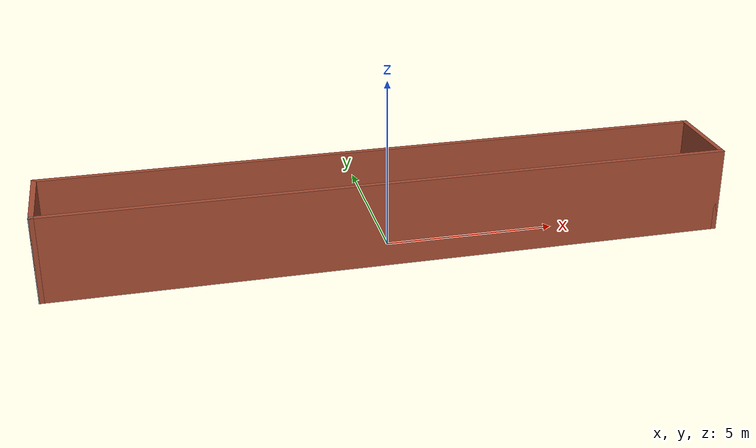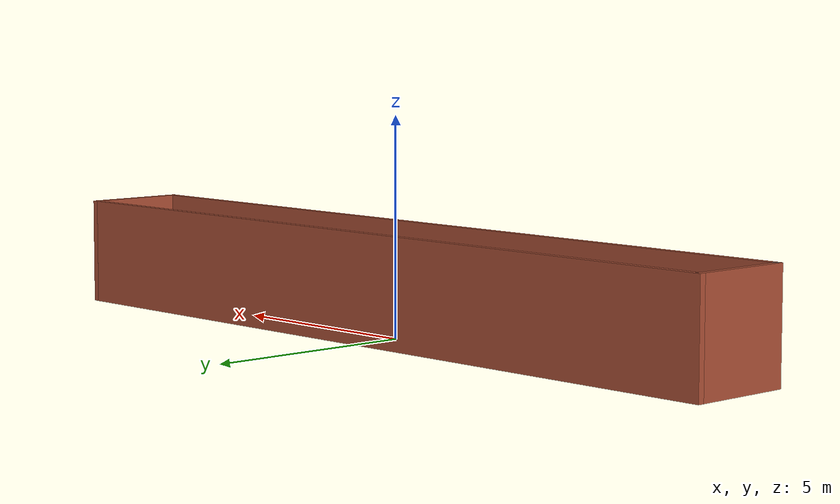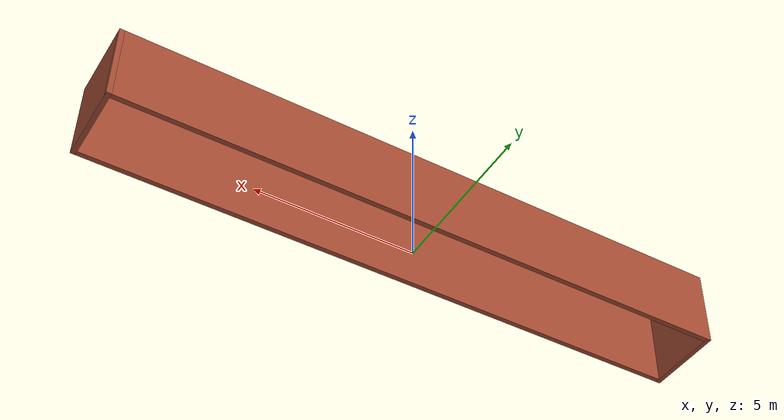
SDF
<?xml version='1.0'?>
<sdf version='1.6'>
  <model name='Hallway'>
    <link name='Wall_5'>
      <pose frame=''>0 1.175 0 0 -0 3.14159</pose>
      <self_collide>0</self_collide>
      <kinematic>0</kinematic>
      <visual name='Wall_5_Visual'>
        <pose frame=''>0 0 1.25 0 -0 0</pose>
        <geometry>
          <box>
            <size>19.5 0.15 2.5</size>
          </box>
        </geometry>
        <material>
          <script>
            <uri>file://media/materials/scripts/gazebo.material</uri>
            <name>Gazebo/Bricks</name>
          </script>
          <ambient>1 1 1 1</ambient>
          <diffuse>1 1 1 1</diffuse>
          <specular>0.2 0.2 0.2 1</specular>
          <emissive>0 0 0 1</emissive>
        </material>
        <meta>
          <layer>0</layer>
        </meta>
        <transparency>0</transparency>
        <cast_shadows>1</cast_shadows>
      </visual>
      <collision name='Wall_5_Collision'>
        <laser_retro>0</laser_retro>
        <max_contacts>10</max_contacts>
        <pose frame=''>0 0 1.25 0 -0 0</pose>
        <geometry>
          <box>
            <size>19.5 0.15 2.5</size>
          </box>
        </geometry>
        <surface>
          <friction>
            <ode>
              <mu>1</mu>
              <mu2>1</mu2>
              <fdir1>0 0 0</fdir1>
              <slip1>0</slip1>
              <slip2>0</slip2>
            </ode>
            <torsional>
              <coefficient>1</coefficient>
              <patch_radius>0</patch_radius>
              <surface_radius>0</surface_radius>
              <use_patch_radius>1</use_patch_radius>
              <ode>
                <slip>0</slip>
              </ode>
            </torsional>
          </friction>
          <bounce>
            <restitution_coefficient>0</restitution_coefficient>
            <threshold>1e+06</threshold>
          </bounce>
          <contact>
            <collide_without_contact>0</collide_without_contact>
            <collide_without_contact_bitmask>1</collide_without_contact_bitmask>
            <collide_bitmask>1</collide_bitmask>
            <ode>
              <soft_cfm>0</soft_cfm>
              <soft_erp>0.2</soft_erp>
              <kp>1e+13</kp>
              <kd>1</kd>
              <max_vel>0.01</max_vel>
              <min_depth>0</min_depth>
            </ode>
            <bullet>
              <split_impulse>1</split_impulse>
              <split_impulse_penetration_threshold>-0.01</split_impulse_penetration_threshold>
              <soft_cfm>0</soft_cfm>
              <soft_erp>0.2</soft_erp>
              <kp>1e+13</kp>
              <kd>1</kd>
            </bullet>
          </contact>
        </surface>
      </collision>
    </link>
    <link name='Wall_6'>
      <pose frame=''>-9.675 0 0 0 0 -1.5708</pose>
      <self_collide>0</self_collide>
      <kinematic>0</kinematic>
      <visual name='Wall_6_Visual'>
        <pose frame=''>0 0 1.25 0 -0 0</pose>
        <geometry>
          <box>
            <size>2.5 0.15 2.5</size>
          </box>
        </geometry>
        <material>
          <script>
            <uri>file://media/materials/scripts/gazebo.material</uri>
            <name>Gazebo/Bricks</name>
          </script>
          <ambient>1 1 1 1</ambient>
          <diffuse>1 1 1 1</diffuse>
          <specular>0.2 0.2 0.2 1</specular>
          <emissive>0 0 0 1</emissive>
        </material>
        <meta>
          <layer>0</layer>
        </meta>
        <transparency>0</transparency>
        <cast_shadows>1</cast_shadows>
      </visual>
      <collision name='Wall_6_Collision'>
        <laser_retro>0</laser_retro>
        <max_contacts>10</max_contacts>
        <pose frame=''>0 0 1.25 0 -0 0</pose>
        <geometry>
          <box>
            <size>2.5 0.15 2.5</size>
          </box>
        </geometry>
        <surface>
          <friction>
            <ode>
              <mu>1</mu>
              <mu2>1</mu2>
              <fdir1>0 0 0</fdir1>
              <slip1>0</slip1>
              <slip2>0</slip2>
            </ode>
            <torsional>
              <coefficient>1</coefficient>
              <patch_radius>0</patch_radius>
              <surface_radius>0</surface_radius>
              <use_patch_radius>1</use_patch_radius>
              <ode>
                <slip>0</slip>
              </ode>
            </torsional>
          </friction>
          <bounce>
            <restitution_coefficient>0</restitution_coefficient>
            <threshold>1e+06</threshold>
          </bounce>
          <contact>
            <collide_without_contact>0</collide_without_contact>
            <collide_without_contact_bitmask>1</collide_without_contact_bitmask>
            <collide_bitmask>1</collide_bitmask>
            <ode>
              <soft_cfm>0</soft_cfm>
              <soft_erp>0.2</soft_erp>
              <kp>1e+13</kp>
              <kd>1</kd>
              <max_vel>0.01</max_vel>
              <min_depth>0</min_depth>
            </ode>
            <bullet>
              <split_impulse>1</split_impulse>
              <split_impulse_penetration_threshold>-0.01</split_impulse_penetration_threshold>
              <soft_cfm>0</soft_cfm>
              <soft_erp>0.2</soft_erp>
              <kp>1e+13</kp>
              <kd>1</kd>
            </bullet>
          </contact>
        </surface>
      </collision>
    </link>
    <link name='Wall_7'>
      <pose frame=''>-9.675 -1.175 0 0 -0 0</pose>
      <self_collide>0</self_collide>
      <kinematic>0</kinematic>
      <visual name='Wall_7_Visual'>
        <pose frame=''>0 0 1.25 0 -0 0</pose>
        <geometry>
          <box>
            <size>0.15 0.15 2.5</size>
          </box>
        </geometry>
        <material>
          <script>
            <uri>file://media/materials/scripts/gazebo.material</uri>
            <name>Gazebo/Grey</name>
          </script>
          <ambient>1 1 1 1</ambient>
          <diffuse>0.7 0.7 0.7 1</diffuse>
          <specular>0.01 0.01 0.01 1</specular>
          <emissive>0 0 0 1</emissive>
        </material>
        <meta>
          <layer>0</layer>
        </meta>
        <transparency>0</transparency>
        <cast_shadows>1</cast_shadows>
      </visual>
      <collision name='Wall_7_Collision'>
        <laser_retro>0</laser_retro>
        <max_contacts>10</max_contacts>
        <pose frame=''>0 0 1.25 0 -0 0</pose>
        <geometry>
          <box>
            <size>0.15 0.15 2.5</size>
          </box>
        </geometry>
        <surface>
          <friction>
            <ode>
              <mu>1</mu>
              <mu2>1</mu2>
              <fdir1>0 0 0</fdir1>
              <slip1>0</slip1>
              <slip2>0</slip2>
            </ode>
            <torsional>
              <coefficient>1</coefficient>
              <patch_radius>0</patch_radius>
              <surface_radius>0</surface_radius>
              <use_patch_radius>1</use_patch_radius>
              <ode>
                <slip>0</slip>
              </ode>
            </torsional>
          </friction>
          <bounce>
            <restitution_coefficient>0</restitution_coefficient>
            <threshold>1e+06</threshold>
          </bounce>
          <contact>
            <collide_without_contact>0</collide_without_contact>
            <collide_without_contact_bitmask>1</collide_without_contact_bitmask>
            <collide_bitmask>1</collide_bitmask>
            <ode>
              <soft_cfm>0</soft_cfm>
              <soft_erp>0.2</soft_erp>
              <kp>1e+13</kp>
              <kd>1</kd>
              <max_vel>0.01</max_vel>
              <min_depth>0</min_depth>
            </ode>
            <bullet>
              <split_impulse>1</split_impulse>
              <split_impulse_penetration_threshold>-0.01</split_impulse_penetration_threshold>
              <soft_cfm>0</soft_cfm>
              <soft_erp>0.2</soft_erp>
              <kp>1e+13</kp>
              <kd>1</kd>
            </bullet>
          </contact>
        </surface>
      </collision>
    </link>
    <link name='Wall_8'>
      <pose frame=''>0 -1.175 0 0 -0 0</pose>
      <self_collide>0</self_collide>
      <kinematic>0</kinematic>
      <visual name='Wall_8_Visual'>
        <pose frame=''>0 0 1.25 0 -0 0</pose>
        <geometry>
          <box>
            <size>19.5 0.15 2.5</size>
          </box>
        </geometry>
        <material>
          <script>
            <uri>file://media/materials/scripts/gazebo.material</uri>
            <name>Gazebo/Bricks</name>
          </script>
          <ambient>1 1 1 1</ambient>
          <diffuse>1 1 1 1</diffuse>
          <specular>0.2 0.2 0.2 1</specular>
          <emissive>0 0 0 1</emissive>
        </material>
        <meta>
          <layer>0</layer>
        </meta>
        <transparency>0</transparency>
        <cast_shadows>1</cast_shadows>
      </visual>
      <collision name='Wall_8_Collision'>
        <laser_retro>0</laser_retro>
        <max_contacts>10</max_contacts>
        <pose frame=''>0 0 1.25 0 -0 0</pose>
        <geometry>
          <box>
            <size>19.5 0.15 2.5</size>
          </box>
        </geometry>
        <surface>
          <friction>
            <ode>
              <mu>1</mu>
              <mu2>1</mu2>
              <fdir1>0 0 0</fdir1>
              <slip1>0</slip1>
              <slip2>0</slip2>
            </ode>
            <torsional>
              <coefficient>1</coefficient>
              <patch_radius>0</patch_radius>
              <surface_radius>0</surface_radius>
              <use_patch_radius>1</use_patch_radius>
              <ode>
                <slip>0</slip>
              </ode>
            </torsional>
          </friction>
          <bounce>
            <restitution_coefficient>0</restitution_coefficient>
            <threshold>1e+06</threshold>
          </bounce>
          <contact>
            <collide_without_contact>0</collide_without_contact>
            <collide_without_contact_bitmask>1</collide_without_contact_bitmask>
            <collide_bitmask>1</collide_bitmask>
            <ode>
              <soft_cfm>0</soft_cfm>
              <soft_erp>0.2</soft_erp>
              <kp>1e+13</kp>
              <kd>1</kd>
              <max_vel>0.01</max_vel>
              <min_depth>0</min_depth>
            </ode>
            <bullet>
              <split_impulse>1</split_impulse>
              <split_impulse_penetration_threshold>-0.01</split_impulse_penetration_threshold>
              <soft_cfm>0</soft_cfm>
              <soft_erp>0.2</soft_erp>
              <kp>1e+13</kp>
              <kd>1</kd>
            </bullet>
          </contact>
        </surface>
      </collision>
    </link>
    <link name='Wall_9'>
      <pose frame=''>9.675 0 0 0 -0 1.5708</pose>
      <self_collide>0</self_collide>
      <kinematic>0</kinematic>
      <visual name='Wall_9_Visual'>
        <pose frame=''>0 0 1.25 0 -0 0</pose>
        <geometry>
          <box>
            <size>2.5 0.15 2.5</size>
          </box>
        </geometry>
        <material>
          <script>
            <uri>file://media/materials/scripts/gazebo.material</uri>
            <name>Gazebo/Bricks</name>
          </script>
          <ambient>1 1 1 1</ambient>
          <diffuse>1 1 1 1</diffuse>
          <specular>0.2 0.2 0.2 1</specular>
          <emissive>0 0 0 1</emissive>
        </material>
        <meta>
          <layer>0</layer>
        </meta>
        <transparency>0</transparency>
        <cast_shadows>1</cast_shadows>
      </visual>
      <collision name='Wall_9_Collision'>
        <laser_retro>0</laser_retro>
        <max_contacts>10</max_contacts>
        <pose frame=''>0 0 1.25 0 -0 0</pose>
        <geometry>
          <box>
            <size>2.5 0.15 2.5</size>
          </box>
        </geometry>
        <surface>
          <friction>
            <ode>
              <mu>1</mu>
              <mu2>1</mu2>
              <fdir1>0 0 0</fdir1>
              <slip1>0</slip1>
              <slip2>0</slip2>
            </ode>
            <torsional>
              <coefficient>1</coefficient>
              <patch_radius>0</patch_radius>
              <surface_radius>0</surface_radius>
              <use_patch_radius>1</use_patch_radius>
              <ode>
                <slip>0</slip>
              </ode>
            </torsional>
          </friction>
          <bounce>
            <restitution_coefficient>0</restitution_coefficient>
            <threshold>1e+06</threshold>
          </bounce>
          <contact>
            <collide_without_contact>0</collide_without_contact>
            <collide_without_contact_bitmask>1</collide_without_contact_bitmask>
            <collide_bitmask>1</collide_bitmask>
            <ode>
              <soft_cfm>0</soft_cfm>
              <soft_erp>0.2</soft_erp>
              <kp>1e+13</kp>
              <kd>1</kd>
              <max_vel>0.01</max_vel>
              <min_depth>0</min_depth>
            </ode>
            <bullet>
              <split_impulse>1</split_impulse>
              <split_impulse_penetration_threshold>-0.01</split_impulse_penetration_threshold>
              <soft_cfm>0</soft_cfm>
              <soft_erp>0.2</soft_erp>
              <kp>1e+13</kp>
              <kd>1</kd>
            </bullet>
          </contact>
        </surface>
      </collision>
    </link>
    <static>1</static>
    <allow_auto_disable>1</allow_auto_disable>
  </model>
</sdf>
